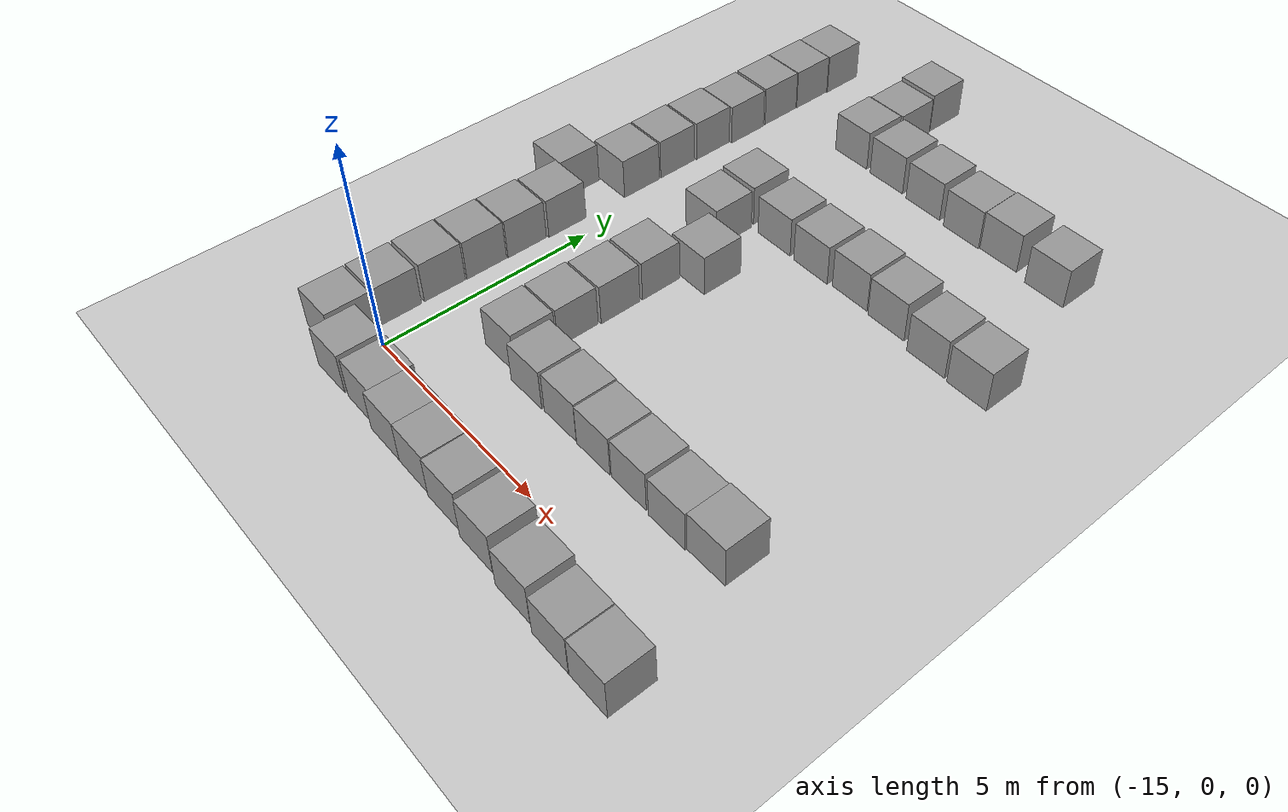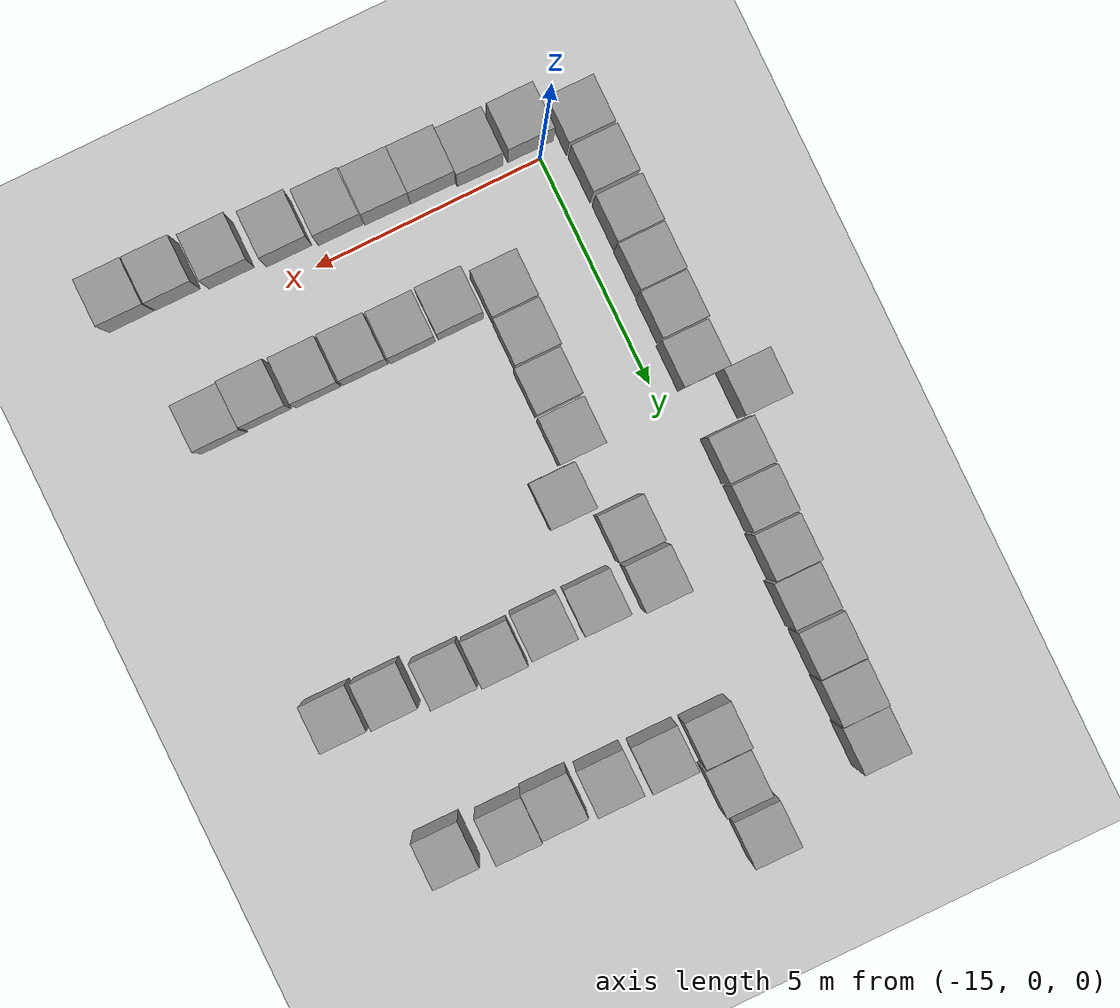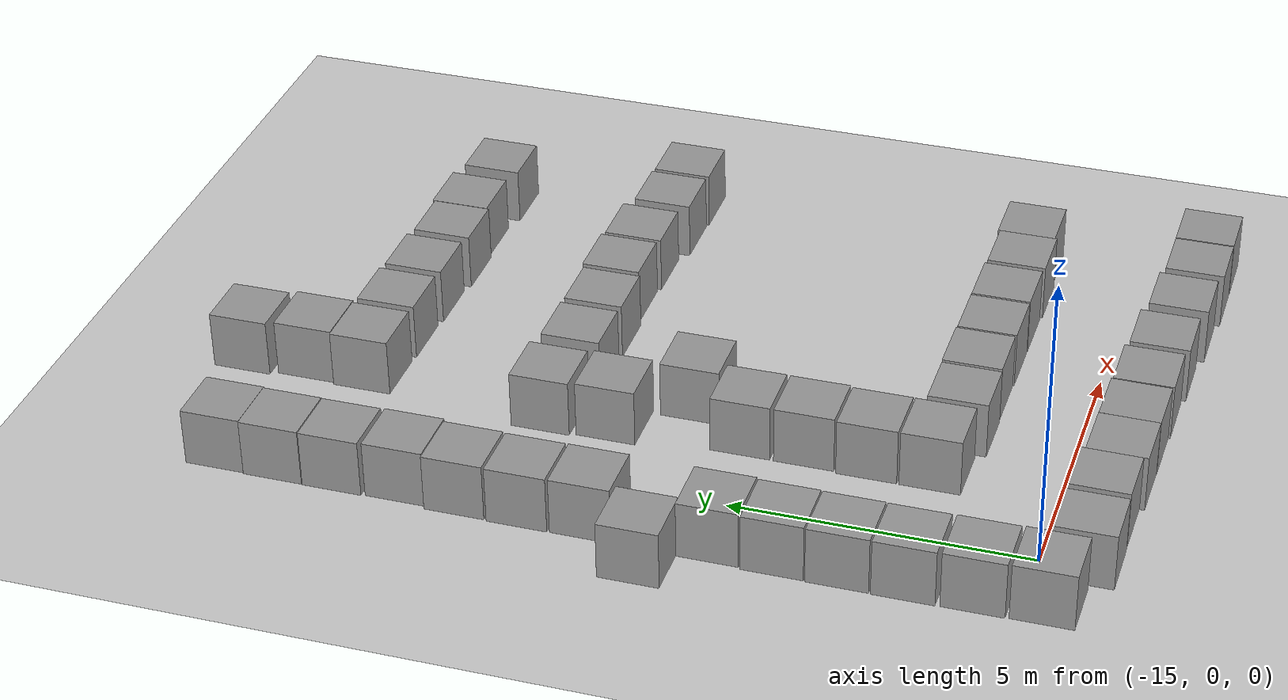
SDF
<sdf version="1.7">
 <world name="default">
  <model name="ground_plane">
   <static>1</static>
   <link name="link">
    <collision name="collision">
     <geometry><plane><normal>0 0 1</normal><size>100 100</size></plane></geometry>
     <surface><friction><ode><mu>100</mu><mu2>50</mu2></ode></friction></surface>
    </collision>
    <visual name="visual">
     <cast_shadows>0</cast_shadows>
     <geometry><plane><normal>0 0 1</normal><size>100 100</size></plane></geometry>
     <material>
      <script><uri>file://media/materials/scripts/gazebo.material</uri><name>Gazebo/Grey</name></script>
     </material>
    </visual>
   </link>
  </model>
  <model name="unit_box_76">
   <pose>-7.36966 11.5014 0.499995 -1e-05 0 0</pose>
   <link name="link">
    <inertial>
     <mass>1</mass>
     <inertia>
      <ixx>0.166667</ixx>
      <ixy>0</ixy>
      <ixz>0</ixz>
      <iyy>0.166667</iyy>
      <iyz>0</iyz>
      <izz>0.166667</izz>
     </inertia>
    </inertial>
    <collision name="collision"><geometry><box><size>1 1 1</size></box></geometry></collision>
    <visual name="visual">
     <geometry><box><size>1 1 1</size></box></geometry>
     <material>
      <script><name>Gazebo/Grey</name><uri>file://media/materials/scripts/gazebo.material</uri></script>
     </material>
    </visual>
   </link>
  </model>
  <model name="unit_box_77">
   <pose>-8.67595 11.6101 0.499995 0 1e-05 0</pose>
   <link name="link">
    <inertial>
     <mass>1</mass>
     <inertia>
      <ixx>0.166667</ixx>
      <ixy>0</ixy>
      <ixz>0</ixz>
      <iyy>0.166667</iyy>
      <iyz>0</iyz>
      <izz>0.166667</izz>
     </inertia>
    </inertial>
    <collision name="collision"><geometry><box><size>1 1 1</size></box></geometry></collision>
    <visual name="visual">
     <geometry><box><size>1 1 1</size></box></geometry>
     <material>
      <script><name>Gazebo/Grey</name><uri>file://media/materials/scripts/gazebo.material</uri></script>
     </material>
    </visual>
   </link>
  </model>
  <model name="unit_box_78">
   <pose>-9.68226 11.5677 0.499995 0 -1e-05 0</pose>
   <link name="link">
    <inertial>
     <mass>1</mass>
     <inertia>
      <ixx>0.166667</ixx>
      <ixy>0</ixy>
      <ixz>0</ixz>
      <iyy>0.166667</iyy>
      <iyz>0</iyz>
      <izz>0.166667</izz>
     </inertia>
    </inertial>
    <collision name="collision"><geometry><box><size>1 1 1</size></box></geometry></collision>
    <visual name="visual">
     <geometry><box><size>1 1 1</size></box></geometry>
     <material>
      <script><name>Gazebo/Grey</name><uri>file://media/materials/scripts/gazebo.material</uri></script>
     </material>
    </visual>
   </link>
  </model>
  <model name="unit_box_79">
   <pose>-10.8496 11.6353 0.499995 0 1e-05 0</pose>
   <link name="link">
    <inertial>
     <mass>1</mass>
     <inertia>
      <ixx>0.166667</ixx>
      <ixy>0</ixy>
      <ixz>0</ixz>
      <iyy>0.166667</iyy>
      <iyz>0</iyz>
      <izz>0.166667</izz>
     </inertia>
    </inertial>
    <collision name="collision"><geometry><box><size>1 1 1</size></box></geometry></collision>
    <visual name="visual">
     <geometry><box><size>1 1 1</size></box></geometry>
     <material>
      <script><name>Gazebo/Grey</name><uri>file://media/materials/scripts/gazebo.material</uri></script>
     </material>
    </visual>
   </link>
  </model>
  <model name="unit_box_82">
   <pose>-6.5467 8.19298 0.499995 0 1e-05 0</pose>
   <link name="link">
    <inertial>
     <mass>1</mass>
     <inertia>
      <ixx>0.166667</ixx>
      <ixy>0</ixy>
      <ixz>0</ixz>
      <iyy>0.166667</iyy>
      <iyz>0</iyz>
      <izz>0.166667</izz>
     </inertia>
    </inertial>
    <collision name="collision"><geometry><box><size>1 1 1</size></box></geometry></collision>
    <visual name="visual">
     <geometry><box><size>1 1 1</size></box></geometry>
     <material>
      <script><name>Gazebo/Grey</name><uri>file://media/materials/scripts/gazebo.material</uri></script>
     </material>
    </visual>
   </link>
  </model>
  <model name="unit_box_83">
   <pose>-7.62958 8.22347 0.499995 0 -1e-05 0</pose>
   <link name="link">
    <inertial>
     <mass>1</mass>
     <inertia>
      <ixx>0.166667</ixx>
      <ixy>0</ixy>
      <ixz>0</ixz>
      <iyy>0.166667</iyy>
      <iyz>0</iyz>
      <izz>0.166667</izz>
     </inertia>
    </inertial>
    <collision name="collision"><geometry><box><size>1 1 1</size></box></geometry></collision>
    <visual name="visual">
     <geometry><box><size>1 1 1</size></box></geometry>
     <material>
      <script><name>Gazebo/Grey</name><uri>file://media/materials/scripts/gazebo.material</uri></script>
     </material>
    </visual>
   </link>
  </model>
  <model name="unit_box_84">
   <pose>-8.83422 8.36705 0.499995 0 1e-05 0</pose>
   <link name="link">
    <inertial>
     <mass>1</mass>
     <inertia>
      <ixx>0.166667</ixx>
      <ixy>0</ixy>
      <ixz>0</ixz>
      <iyy>0.166667</iyy>
      <iyz>0</iyz>
      <izz>0.166667</izz>
     </inertia>
    </inertial>
    <collision name="collision"><geometry><box><size>1 1 1</size></box></geometry></collision>
    <visual name="visual">
     <geometry><box><size>1 1 1</size></box></geometry>
     <material>
      <script><name>Gazebo/Grey</name><uri>file://media/materials/scripts/gazebo.material</uri></script>
     </material>
    </visual>
   </link>
  </model>
  <model name="unit_box_85">
   <pose>-11.9972 11.6792 0.499995 -1e-05 0 0</pose>
   <link name="link">
    <inertial>
     <mass>1</mass>
     <inertia>
      <ixx>0.166667</ixx>
      <ixy>0</ixy>
      <ixz>0</ixz>
      <iyy>0.166667</iyy>
      <iyz>0</iyz>
      <izz>0.166667</izz>
     </inertia>
    </inertial>
    <collision name="collision"><geometry><box><size>1 1 1</size></box></geometry></collision>
    <visual name="visual">
     <geometry><box><size>1 1 1</size></box></geometry>
     <material>
      <script><name>Gazebo/Grey</name><uri>file://media/materials/scripts/gazebo.material</uri></script>
     </material>
    </visual>
   </link>
  </model>
  <model name="unit_box_86">
   <pose>-13.1299 11.7058 0.499995 0 1e-05 0</pose>
   <link name="link">
    <inertial>
     <mass>1</mass>
     <inertia>
      <ixx>0.166667</ixx>
      <ixy>0</ixy>
      <ixz>0</ixz>
      <iyy>0.166667</iyy>
      <iyz>0</iyz>
      <izz>0.166667</izz>
     </inertia>
    </inertial>
    <collision name="collision"><geometry><box><size>1 1 1</size></box></geometry></collision>
    <visual name="visual">
     <geometry><box><size>1 1 1</size></box></geometry>
     <material>
      <script><name>Gazebo/Grey</name><uri>file://media/materials/scripts/gazebo.material</uri></script>
     </material>
    </visual>
   </link>
  </model>
  <model name="unit_box_87">
   <pose>-9.9062 8.41725 0.499995 0 1e-05 0</pose>
   <link name="link">
    <inertial>
     <mass>1</mass>
     <inertia>
      <ixx>0.166667</ixx>
      <ixy>0</ixy>
      <ixz>0</ixz>
      <iyy>0.166667</iyy>
      <iyz>0</iyz>
      <izz>0.166667</izz>
     </inertia>
    </inertial>
    <collision name="collision"><geometry><box><size>1 1 1</size></box></geometry></collision>
    <visual name="visual">
     <geometry><box><size>1 1 1</size></box></geometry>
     <material>
      <script><name>Gazebo/Grey</name><uri>file://media/materials/scripts/gazebo.material</uri></script>
     </material>
    </visual>
   </link>
  </model>
  <model name="unit_box_88">
   <pose>-11.0062 8.36397 0.499995 -1e-05 -0 0</pose>
   <link name="link">
    <inertial>
     <mass>1</mass>
     <inertia>
      <ixx>0.166667</ixx>
      <ixy>0</ixy>
      <ixz>0</ixz>
      <iyy>0.166667</iyy>
      <iyz>0</iyz>
      <izz>0.166667</izz>
     </inertia>
    </inertial>
    <collision name="collision"><geometry><box><size>1 1 1</size></box></geometry></collision>
    <visual name="visual">
     <geometry><box><size>1 1 1</size></box></geometry>
     <material>
      <script><name>Gazebo/Grey</name><uri>file://media/materials/scripts/gazebo.material</uri></script>
     </material>
    </visual>
   </link>
  </model>
  <model name="unit_box_89">
   <pose>-12.1401 8.38199 0.499995 0 1e-05 0</pose>
   <link name="link">
    <inertial>
     <mass>1</mass>
     <inertia>
      <ixx>0.166667</ixx>
      <ixy>0</ixy>
      <ixz>0</ixz>
      <iyy>0.166667</iyy>
      <iyz>0</iyz>
      <izz>0.166667</izz>
     </inertia>
    </inertial>
    <collision name="collision"><geometry><box><size>1 1 1</size></box></geometry></collision>
    <visual name="visual">
     <geometry><box><size>1 1 1</size></box></geometry>
     <material>
      <script><name>Gazebo/Grey</name><uri>file://media/materials/scripts/gazebo.material</uri></script>
     </material>
    </visual>
   </link>
  </model>
  <model name="unit_box_90">
   <pose>-13.4024 8.4816 0.499995 0 1e-05 0</pose>
   <link name="link">
    <inertial>
     <mass>1</mass>
     <inertia>
      <ixx>0.166667</ixx>
      <ixy>0</ixy>
      <ixz>0</ixz>
      <iyy>0.166667</iyy>
      <iyz>0</iyz>
      <izz>0.166667</izz>
     </inertia>
    </inertial>
    <collision name="collision"><geometry><box><size>1 1 1</size></box></geometry></collision>
    <visual name="visual">
     <geometry><box><size>1 1 1</size></box></geometry>
     <material>
      <script><name>Gazebo/Grey</name><uri>file://media/materials/scripts/gazebo.material</uri></script>
     </material>
    </visual>
   </link>
  </model>
  <model name="unit_box_91">
   <pose>-13.0801 12.7181 0.499995 -1e-05 0 0</pose>
   <link name="link">
    <inertial>
     <mass>1</mass>
     <inertia>
      <ixx>0.166667</ixx>
      <ixy>0</ixy>
      <ixz>0</ixz>
      <iyy>0.166667</iyy>
      <iyz>0</iyz>
      <izz>0.166667</izz>
     </inertia>
    </inertial>
    <collision name="collision"><geometry><box><size>1 1 1</size></box></geometry></collision>
    <visual name="visual">
     <geometry><box><size>1 1 1</size></box></geometry>
     <material>
      <script><name>Gazebo/Grey</name><uri>file://media/materials/scripts/gazebo.material</uri></script>
     </material>
    </visual>
   </link>
  </model>
  <model name="unit_box_92">
   <pose>-13.1566 13.8382 0.499995 0 1e-05 0</pose>
   <link name="link">
    <inertial>
     <mass>1</mass>
     <inertia>
      <ixx>0.166667</ixx>
      <ixy>0</ixy>
      <ixz>0</ixz>
      <iyy>0.166667</iyy>
      <iyz>0</iyz>
      <izz>0.166667</izz>
     </inertia>
    </inertial>
    <collision name="collision"><geometry><box><size>1 1 1</size></box></geometry></collision>
    <visual name="visual">
     <geometry><box><size>1 1 1</size></box></geometry>
     <material>
      <script><name>Gazebo/Grey</name><uri>file://media/materials/scripts/gazebo.material</uri></script>
     </material>
    </visual>
   </link>
  </model>
  <model name="unit_box_93">
   <pose>-15.872 11.0985 0.5 -0 -0 -0</pose>
   <link name="link">
    <inertial>
     <mass>1</mass>
     <inertia>
      <ixx>0.166667</ixx>
      <ixy>0</ixy>
      <ixz>0</ixz>
      <iyy>0.166667</iyy>
      <iyz>0</iyz>
      <izz>0.166667</izz>
     </inertia>
    </inertial>
    <collision name="collision"><geometry><box><size>1 1 1</size></box></geometry></collision>
    <visual name="visual">
     <geometry><box><size>1 1 1</size></box></geometry>
     <material>
      <script><name>Gazebo/Grey</name><uri>file://media/materials/scripts/gazebo.material</uri></script>
     </material>
    </visual>
   </link>
  </model>
  <model name="unit_box_94">
   <pose>-15.9201 9.01925 0.499995 -1e-05 -0 0</pose>
   <link name="link">
    <inertial>
     <mass>1</mass>
     <inertia>
      <ixx>0.166667</ixx>
      <ixy>0</ixy>
      <ixz>0</ixz>
      <iyy>0.166667</iyy>
      <iyz>0</iyz>
      <izz>0.166667</izz>
     </inertia>
    </inertial>
    <collision name="collision"><geometry><box><size>1 1 1</size></box></geometry></collision>
    <visual name="visual">
     <geometry><box><size>1 1 1</size></box></geometry>
     <material>
      <script><name>Gazebo/Grey</name><uri>file://media/materials/scripts/gazebo.material</uri></script>
     </material>
    </visual>
   </link>
  </model>
  <model name="unit_box_95">
   <pose>-15.8541 10.0347 0.499995 0 1e-05 0</pose>
   <link name="link">
    <inertial>
     <mass>1</mass>
     <inertia>
      <ixx>0.166667</ixx>
      <ixy>0</ixy>
      <ixz>0</ixz>
      <iyy>0.166667</iyy>
      <iyz>0</iyz>
      <izz>0.166667</izz>
     </inertia>
    </inertial>
    <collision name="collision"><geometry><box><size>1 1 1</size></box></geometry></collision>
    <visual name="visual">
     <geometry><box><size>1 1 1</size></box></geometry>
     <material>
      <script><name>Gazebo/Grey</name><uri>file://media/materials/scripts/gazebo.material</uri></script>
     </material>
    </visual>
   </link>
  </model>
  <model name="unit_box_96">
   <pose>-15.8622 12.115 0.499995 0 1e-05 0</pose>
   <link name="link">
    <inertial>
     <mass>1</mass>
     <inertia>
      <ixx>0.166667</ixx>
      <ixy>0</ixy>
      <ixz>0</ixz>
      <iyy>0.166667</iyy>
      <iyz>0</iyz>
      <izz>0.166667</izz>
     </inertia>
    </inertial>
    <collision name="collision"><geometry><box><size>1 1 1</size></box></geometry></collision>
    <visual name="visual">
     <geometry><box><size>1 1 1</size></box></geometry>
     <material>
      <script><name>Gazebo/Grey</name><uri>file://media/materials/scripts/gazebo.material</uri></script>
     </material>
    </visual>
   </link>
  </model>
  <model name="unit_box_97">
   <pose>-15.839 13.1183 0.499995 -1e-05 0 0</pose>
   <link name="link">
    <inertial>
     <mass>1</mass>
     <inertia>
      <ixx>0.166667</ixx>
      <ixy>0</ixy>
      <ixz>0</ixz>
      <iyy>0.166667</iyy>
      <iyz>0</iyz>
      <izz>0.166667</izz>
     </inertia>
    </inertial>
    <collision name="collision"><geometry><box><size>1 1 1</size></box></geometry></collision>
    <visual name="visual">
     <geometry><box><size>1 1 1</size></box></geometry>
     <material>
      <script><name>Gazebo/Grey</name><uri>file://media/materials/scripts/gazebo.material</uri></script>
     </material>
    </visual>
   </link>
  </model>
  <model name="unit_box_98">
   <pose>-15.9405 7.97497 0.499995 0 1e-05 0</pose>
   <link name="link">
    <inertial>
     <mass>1</mass>
     <inertia>
      <ixx>0.166667</ixx>
      <ixy>0</ixy>
      <ixz>0</ixz>
      <iyy>0.166667</iyy>
      <iyz>0</iyz>
      <izz>0.166667</izz>
     </inertia>
    </inertial>
    <collision name="collision"><geometry><box><size>1 1 1</size></box></geometry></collision>
    <visual name="visual">
     <geometry><box><size>1 1 1</size></box></geometry>
     <material>
      <script><name>Gazebo/Grey</name><uri>file://media/materials/scripts/gazebo.material</uri></script>
     </material>
    </visual>
   </link>
  </model>
  <model name="unit_box_99">
   <pose>-15.9352 6.93311 0.499995 -1e-05 0 0</pose>
   <link name="link">
    <inertial>
     <mass>1</mass>
     <inertia>
      <ixx>0.166667</ixx>
      <ixy>0</ixy>
      <ixz>0</ixz>
      <iyy>0.166667</iyy>
      <iyz>0</iyz>
      <izz>0.166667</izz>
     </inertia>
    </inertial>
    <collision name="collision"><geometry><box><size>1 1 1</size></box></geometry></collision>
    <visual name="visual">
     <geometry><box><size>1 1 1</size></box></geometry>
     <material>
      <script><name>Gazebo/Grey</name><uri>file://media/materials/scripts/gazebo.material</uri></script>
     </material>
    </visual>
   </link>
  </model>
  <model name="unit_box_100">
   <pose>-16.7856 5.87885 0.499995 1e-05 -0 0</pose>
   <link name="link">
    <inertial>
     <mass>1</mass>
     <inertia>
      <ixx>0.166667</ixx>
      <ixy>0</ixy>
      <ixz>0</ixz>
      <iyy>0.166667</iyy>
      <iyz>0</iyz>
      <izz>0.166667</izz>
     </inertia>
    </inertial>
    <collision name="collision"><geometry><box><size>1 1 1</size></box></geometry></collision>
    <visual name="visual">
     <geometry><box><size>1 1 1</size></box></geometry>
     <material>
      <script><name>Gazebo/Grey</name><uri>file://media/materials/scripts/gazebo.material</uri></script>
     </material>
    </visual>
   </link>
  </model>
  <model name="unit_box_101">
   <pose>-15.9509 4.8761 0.499995 0 1e-05 0</pose>
   <link name="link">
    <inertial>
     <mass>1</mass>
     <inertia>
      <ixx>0.166667</ixx>
      <ixy>0</ixy>
      <ixz>0</ixz>
      <iyy>0.166667</iyy>
      <iyz>0</iyz>
      <izz>0.166667</izz>
     </inertia>
    </inertial>
    <collision name="collision"><geometry><box><size>1 1 1</size></box></geometry></collision>
    <visual name="visual">
     <geometry><box><size>1 1 1</size></box></geometry>
     <material>
      <script><name>Gazebo/Grey</name><uri>file://media/materials/scripts/gazebo.material</uri></script>
     </material>
    </visual>
   </link>
  </model>
  <model name="unit_box_102">
   <pose>-13.3553 7.38097 0.499995 0 1e-05 0</pose>
   <link name="link">
    <inertial>
     <mass>1</mass>
     <inertia>
      <ixx>0.166667</ixx>
      <ixy>0</ixy>
      <ixz>0</ixz>
      <iyy>0.166667</iyy>
      <iyz>0</iyz>
      <izz>0.166667</izz>
     </inertia>
    </inertial>
    <collision name="collision"><geometry><box><size>1 1 1</size></box></geometry></collision>
    <visual name="visual">
     <geometry><box><size>1 1 1</size></box></geometry>
     <material>
      <script><name>Gazebo/Grey</name><uri>file://media/materials/scripts/gazebo.material</uri></script>
     </material>
    </visual>
   </link>
  </model>
  <model name="unit_box_103">
   <pose>-12.4339 6.24083 0.499995 -1e-05 0 0</pose>
   <link name="link">
    <inertial>
     <mass>1</mass>
     <inertia>
      <ixx>0.166667</ixx>
      <ixy>0</ixy>
      <ixz>0</ixz>
      <iyy>0.166667</iyy>
      <iyz>0</iyz>
      <izz>0.166667</izz>
     </inertia>
    </inertial>
    <collision name="collision"><geometry><box><size>1 1 1</size></box></geometry></collision>
    <visual name="visual">
     <geometry><box><size>1 1 1</size></box></geometry>
     <material>
      <script><name>Gazebo/Grey</name><uri>file://media/materials/scripts/gazebo.material</uri></script>
     </material>
    </visual>
   </link>
  </model>
  <model name="unit_box_104">
   <pose>-13.1391 5.18055 0.499995 1e-05 -0 0</pose>
   <link name="link">
    <inertial>
     <mass>1</mass>
     <inertia>
      <ixx>0.166667</ixx>
      <ixy>0</ixy>
      <ixz>0</ixz>
      <iyy>0.166667</iyy>
      <iyz>0</iyz>
      <izz>0.166667</izz>
     </inertia>
    </inertial>
    <collision name="collision"><geometry><box><size>1 1 1</size></box></geometry></collision>
    <visual name="visual">
     <geometry><box><size>1 1 1</size></box></geometry>
     <material>
      <script><name>Gazebo/Grey</name><uri>file://media/materials/scripts/gazebo.material</uri></script>
     </material>
    </visual>
   </link>
  </model>
  <model name="unit_box_105">
   <pose>-13.1438 4.119 0.499995 -1e-05 0 0</pose>
   <link name="link">
    <inertial>
     <mass>1</mass>
     <inertia>
      <ixx>0.166667</ixx>
      <ixy>0</ixy>
      <ixz>0</ixz>
      <iyy>0.166667</iyy>
      <iyz>0</iyz>
      <izz>0.166667</izz>
     </inertia>
    </inertial>
    <collision name="collision"><geometry><box><size>1 1 1</size></box></geometry></collision>
    <visual name="visual">
     <geometry><box><size>1 1 1</size></box></geometry>
     <material>
      <script><name>Gazebo/Grey</name><uri>file://media/materials/scripts/gazebo.material</uri></script>
     </material>
    </visual>
   </link>
  </model>
  <model name="unit_box_106">
   <pose>-13.1862 3.07745 0.499995 0 1e-05 0</pose>
   <link name="link">
    <inertial>
     <mass>1</mass>
     <inertia>
      <ixx>0.166667</ixx>
      <ixy>0</ixy>
      <ixz>0</ixz>
      <iyy>0.166667</iyy>
      <iyz>0</iyz>
      <izz>0.166667</izz>
     </inertia>
    </inertial>
    <collision name="collision"><geometry><box><size>1 1 1</size></box></geometry></collision>
    <visual name="visual">
     <geometry><box><size>1 1 1</size></box></geometry>
     <material>
      <script><name>Gazebo/Grey</name><uri>file://media/materials/scripts/gazebo.material</uri></script>
     </material>
    </visual>
   </link>
  </model>
  <model name="unit_box_107">
   <pose>-13.1906 2.04081 0.499995 -1e-05 0 0</pose>
   <link name="link">
    <inertial>
     <mass>1</mass>
     <inertia>
      <ixx>0.166667</ixx>
      <ixy>0</ixy>
      <ixz>0</ixz>
      <iyy>0.166667</iyy>
      <iyz>0</iyz>
      <izz>0.166667</izz>
     </inertia>
    </inertial>
    <collision name="collision"><geometry><box><size>1 1 1</size></box></geometry></collision>
    <visual name="visual">
     <geometry><box><size>1 1 1</size></box></geometry>
     <material>
      <script><name>Gazebo/Grey</name><uri>file://media/materials/scripts/gazebo.material</uri></script>
     </material>
    </visual>
   </link>
  </model>
  <model name="unit_box_108">
   <pose>-15.9896 3.83812 0.499995 0 1e-05 0</pose>
   <link name="link">
    <inertial>
     <mass>1</mass>
     <inertia>
      <ixx>0.166667</ixx>
      <ixy>0</ixy>
      <ixz>0</ixz>
      <iyy>0.166667</iyy>
      <iyz>0</iyz>
      <izz>0.166667</izz>
     </inertia>
    </inertial>
    <collision name="collision"><geometry><box><size>1 1 1</size></box></geometry></collision>
    <visual name="visual">
     <geometry><box><size>1 1 1</size></box></geometry>
     <material>
      <script><name>Gazebo/Grey</name><uri>file://media/materials/scripts/gazebo.material</uri></script>
     </material>
    </visual>
   </link>
  </model>
  <model name="unit_box_109">
   <pose>-16.0044 2.81289 0.499995 1e-05 -0 0</pose>
   <link name="link">
    <inertial>
     <mass>1</mass>
     <inertia>
      <ixx>0.166667</ixx>
      <ixy>0</ixy>
      <ixz>0</ixz>
      <iyy>0.166667</iyy>
      <iyz>0</iyz>
      <izz>0.166667</izz>
     </inertia>
    </inertial>
    <collision name="collision"><geometry><box><size>1 1 1</size></box></geometry></collision>
    <visual name="visual">
     <geometry><box><size>1 1 1</size></box></geometry>
     <material>
      <script><name>Gazebo/Grey</name><uri>file://media/materials/scripts/gazebo.material</uri></script>
     </material>
    </visual>
   </link>
  </model>
  <model name="unit_box_110">
   <pose>-16.0156 1.78233 0.499995 0 1e-05 0</pose>
   <link name="link">
    <inertial>
     <mass>1</mass>
     <inertia>
      <ixx>0.166667</ixx>
      <ixy>0</ixy>
      <ixz>0</ixz>
      <iyy>0.166667</iyy>
      <iyz>0</iyz>
      <izz>0.166667</izz>
     </inertia>
    </inertial>
    <collision name="collision"><geometry><box><size>1 1 1</size></box></geometry></collision>
    <visual name="visual">
     <geometry><box><size>1 1 1</size></box></geometry>
     <material>
      <script><name>Gazebo/Grey</name><uri>file://media/materials/scripts/gazebo.material</uri></script>
     </material>
    </visual>
   </link>
  </model>
  <model name="unit_box_111">
   <pose>-16.0063 0.710142 0.499995 -1e-05 0 0</pose>
   <link name="link">
    <inertial>
     <mass>1</mass>
     <inertia>
      <ixx>0.166667</ixx>
      <ixy>0</ixy>
      <ixz>0</ixz>
      <iyy>0.166667</iyy>
      <iyz>0</iyz>
      <izz>0.166667</izz>
     </inertia>
    </inertial>
    <collision name="collision"><geometry><box><size>1 1 1</size></box></geometry></collision>
    <visual name="visual">
     <geometry><box><size>1 1 1</size></box></geometry>
     <material>
      <script><name>Gazebo/Grey</name><uri>file://media/materials/scripts/gazebo.material</uri></script>
     </material>
    </visual>
   </link>
  </model>
  <model name="unit_box_112">
   <pose>-15.9928 -0.34604 0.499995 0 1e-05 0</pose>
   <link name="link">
    <inertial>
     <mass>1</mass>
     <inertia>
      <ixx>0.166667</ixx>
      <ixy>0</ixy>
      <ixz>0</ixz>
      <iyy>0.166667</iyy>
      <iyz>0</iyz>
      <izz>0.166667</izz>
     </inertia>
    </inertial>
    <collision name="collision"><geometry><box><size>1 1 1</size></box></geometry></collision>
    <visual name="visual">
     <geometry><box><size>1 1 1</size></box></geometry>
     <material>
      <script><name>Gazebo/Grey</name><uri>file://media/materials/scripts/gazebo.material</uri></script>
     </material>
    </visual>
   </link>
  </model>
  <model name="unit_box_113">
   <pose>-14.877 -0.728858 0.499995 -1e-05 0 0</pose>
   <link name="link">
    <inertial>
     <mass>1</mass>
     <inertia>
      <ixx>0.166667</ixx>
      <ixy>0</ixy>
      <ixz>0</ixz>
      <iyy>0.166667</iyy>
      <iyz>0</iyz>
      <izz>0.166667</izz>
     </inertia>
    </inertial>
    <collision name="collision"><geometry><box><size>1 1 1</size></box></geometry></collision>
    <visual name="visual">
     <geometry><box><size>1 1 1</size></box></geometry>
     <material>
      <script><name>Gazebo/Grey</name><uri>file://media/materials/scripts/gazebo.material</uri></script>
     </material>
    </visual>
   </link>
  </model>
  <model name="unit_box_114">
   <pose>-13.7609 -0.72631 0.499995 1e-05 0 -0.011216</pose>
   <link name="link">
    <inertial>
     <mass>1</mass>
     <inertia>
      <ixx>0.166667</ixx>
      <ixy>0</ixy>
      <ixz>0</ixz>
      <iyy>0.166667</iyy>
      <iyz>0</iyz>
      <izz>0.166667</izz>
     </inertia>
    </inertial>
    <collision name="collision"><geometry><box><size>1 1 1</size></box></geometry></collision>
    <visual name="visual">
     <geometry><box><size>1 1 1</size></box></geometry>
     <material>
      <script><name>Gazebo/Grey</name><uri>file://media/materials/scripts/gazebo.material</uri></script>
     </material>
    </visual>
   </link>
  </model>
  <model name="unit_box_115">
   <pose>-12.0773 1.87529 0.499995 -1e-05 0 0</pose>
   <link name="link">
    <inertial>
     <mass>1</mass>
     <inertia>
      <ixx>0.166667</ixx>
      <ixy>0</ixy>
      <ixz>0</ixz>
      <iyy>0.166667</iyy>
      <iyz>0</iyz>
      <izz>0.166667</izz>
     </inertia>
    </inertial>
    <collision name="collision"><geometry><box><size>1 1 1</size></box></geometry></collision>
    <visual name="visual">
     <geometry><box><size>1 1 1</size></box></geometry>
     <material>
      <script><name>Gazebo/Grey</name><uri>file://media/materials/scripts/gazebo.material</uri></script>
     </material>
    </visual>
   </link>
  </model>
  <model name="unit_box_116">
   <pose>-11.0152 1.88765 0.5 0 -0 0</pose>
   <link name="link">
    <inertial>
     <mass>1</mass>
     <inertia>
      <ixx>0.166667</ixx>
      <ixy>0</ixy>
      <ixz>0</ixz>
      <iyy>0.166667</iyy>
      <iyz>0</iyz>
      <izz>0.166667</izz>
     </inertia>
    </inertial>
    <collision name="collision"><geometry><box><size>1 1 1</size></box></geometry></collision>
    <visual name="visual">
     <geometry><box><size>1 1 1</size></box></geometry>
     <material>
      <script><name>Gazebo/Grey</name><uri>file://media/materials/scripts/gazebo.material</uri></script>
     </material>
    </visual>
   </link>
  </model>
  <model name="unit_box_117">
   <pose>-9.97691 1.86931 0.499995 0 1e-05 0</pose>
   <link name="link">
    <inertial>
     <mass>1</mass>
     <inertia>
      <ixx>0.166667</ixx>
      <ixy>0</ixy>
      <ixz>0</ixz>
      <iyy>0.166667</iyy>
      <iyz>0</iyz>
      <izz>0.166667</izz>
     </inertia>
    </inertial>
    <collision name="collision"><geometry><box><size>1 1 1</size></box></geometry></collision>
    <visual name="visual">
     <geometry><box><size>1 1 1</size></box></geometry>
     <material>
      <script><name>Gazebo/Grey</name><uri>file://media/materials/scripts/gazebo.material</uri></script>
     </material>
    </visual>
   </link>
  </model>
  <model name="unit_box_118">
   <pose>-8.93478 1.86691 0.499995 1e-05 -0 0</pose>
   <link name="link">
    <inertial>
     <mass>1</mass>
     <inertia>
      <ixx>0.166667</ixx>
      <ixy>0</ixy>
      <ixz>0</ixz>
      <iyy>0.166667</iyy>
      <iyz>0</iyz>
      <izz>0.166667</izz>
     </inertia>
    </inertial>
    <collision name="collision"><geometry><box><size>1 1 1</size></box></geometry></collision>
    <visual name="visual">
     <geometry><box><size>1 1 1</size></box></geometry>
     <material>
      <script><name>Gazebo/Grey</name><uri>file://media/materials/scripts/gazebo.material</uri></script>
     </material>
    </visual>
   </link>
  </model>
  <model name="unit_box_119">
   <pose>-7.84055 1.83815 0.499995 -0 -1e-05 0.002763</pose>
   <link name="link">
    <inertial>
     <mass>1</mass>
     <inertia>
      <ixx>0.166667</ixx>
      <ixy>0</ixy>
      <ixz>0</ixz>
      <iyy>0.166667</iyy>
      <iyz>0</iyz>
      <izz>0.166667</izz>
     </inertia>
    </inertial>
    <collision name="collision"><geometry><box><size>1 1 1</size></box></geometry></collision>
    <visual name="visual">
     <geometry><box><size>1 1 1</size></box></geometry>
     <material>
      <script><name>Gazebo/Grey</name><uri>file://media/materials/scripts/gazebo.material</uri></script>
     </material>
    </visual>
   </link>
  </model>
  <model name="unit_box_120">
   <pose>-6.84061 1.87689 0.499995 -0 1e-05 0.002709</pose>
   <link name="link">
    <inertial>
     <mass>1</mass>
     <inertia>
      <ixx>0.166667</ixx>
      <ixy>0</ixy>
      <ixz>0</ixz>
      <iyy>0.166667</iyy>
      <iyz>0</iyz>
      <izz>0.166667</izz>
     </inertia>
    </inertial>
    <collision name="collision"><geometry><box><size>1 1 1</size></box></geometry></collision>
    <visual name="visual">
     <geometry><box><size>1 1 1</size></box></geometry>
     <material>
      <script><name>Gazebo/Grey</name><uri>file://media/materials/scripts/gazebo.material</uri></script>
     </material>
    </visual>
   </link>
  </model>
  <model name="unit_box_133">
   <pose>-6.21451 -1.11865 0.499995 0 -1e-05 0</pose>
   <link name="link">
    <inertial>
     <mass>1</mass>
     <inertia>
      <ixx>0.166667</ixx>
      <ixy>0</ixy>
      <ixz>0</ixz>
      <iyy>0.166667</iyy>
      <iyz>0</iyz>
      <izz>0.166667</izz>
     </inertia>
    </inertial>
    <collision name="collision"><geometry><box><size>1 1 1</size></box></geometry></collision>
    <visual name="visual">
     <geometry><box><size>1 1 1</size></box></geometry>
     <material>
      <script><name>Gazebo/Grey</name><uri>file://media/materials/scripts/gazebo.material</uri></script>
     </material>
    </visual>
   </link>
  </model>
  <model name="unit_box_134">
   <pose>-7.23651 -1.11583 0.499995 0 -1e-05 0</pose>
   <link name="link">
    <inertial>
     <mass>1</mass>
     <inertia>
      <ixx>0.166667</ixx>
      <ixy>0</ixy>
      <ixz>0</ixz>
      <iyy>0.166667</iyy>
      <iyz>0</iyz>
      <izz>0.166667</izz>
     </inertia>
    </inertial>
    <collision name="collision"><geometry><box><size>1 1 1</size></box></geometry></collision>
    <visual name="visual">
     <geometry><box><size>1 1 1</size></box></geometry>
     <material>
      <script><name>Gazebo/Grey</name><uri>file://media/materials/scripts/gazebo.material</uri></script>
     </material>
    </visual>
   </link>
  </model>
  <model name="unit_box_135">
   <pose>-8.39557 -1.03793 0.499995 0 -1e-05 0</pose>
   <link name="link">
    <inertial>
     <mass>1</mass>
     <inertia>
      <ixx>0.166667</ixx>
      <ixy>0</ixy>
      <ixz>0</ixz>
      <iyy>0.166667</iyy>
      <iyz>0</iyz>
      <izz>0.166667</izz>
     </inertia>
    </inertial>
    <collision name="collision"><geometry><box><size>1 1 1</size></box></geometry></collision>
    <visual name="visual">
     <geometry><box><size>1 1 1</size></box></geometry>
     <material>
      <script><name>Gazebo/Grey</name><uri>file://media/materials/scripts/gazebo.material</uri></script>
     </material>
    </visual>
   </link>
  </model>
  <model name="unit_box_136">
   <pose>-9.62361 -0.935877 0.499995 -1e-05 -0 -0</pose>
   <link name="link">
    <inertial>
     <mass>1</mass>
     <inertia>
      <ixx>0.166667</ixx>
      <ixy>0</ixy>
      <ixz>0</ixz>
      <iyy>0.166667</iyy>
      <iyz>0</iyz>
      <izz>0.166667</izz>
     </inertia>
    </inertial>
    <collision name="collision"><geometry><box><size>1 1 1</size></box></geometry></collision>
    <visual name="visual">
     <geometry><box><size>1 1 1</size></box></geometry>
     <material>
      <script><name>Gazebo/Grey</name><uri>file://media/materials/scripts/gazebo.material</uri></script>
     </material>
    </visual>
   </link>
  </model>
  <model name="unit_box_137">
   <pose>-10.74 -0.869872 0.499995 1e-05 -0 0</pose>
   <link name="link">
    <inertial>
     <mass>1</mass>
     <inertia>
      <ixx>0.166667</ixx>
      <ixy>0</ixy>
      <ixz>0</ixz>
      <iyy>0.166667</iyy>
      <iyz>0</iyz>
      <izz>0.166667</izz>
     </inertia>
    </inertial>
    <collision name="collision"><geometry><box><size>1 1 1</size></box></geometry></collision>
    <visual name="visual">
     <geometry><box><size>1 1 1</size></box></geometry>
     <material>
      <script><name>Gazebo/Grey</name><uri>file://media/materials/scripts/gazebo.material</uri></script>
     </material>
    </visual>
   </link>
  </model>
  <model name="unit_box_138">
   <pose>-11.7618 -0.833957 0.499995 0 1e-05 -0.011209</pose>
   <link name="link">
    <inertial>
     <mass>1</mass>
     <inertia>
      <ixx>0.166667</ixx>
      <ixy>0</ixy>
      <ixz>0</ixz>
      <iyy>0.166667</iyy>
      <iyz>0</iyz>
      <izz>0.166667</izz>
     </inertia>
    </inertial>
    <collision name="collision"><geometry><box><size>1 1 1</size></box></geometry></collision>
    <visual name="visual">
     <geometry><box><size>1 1 1</size></box></geometry>
     <material>
      <script><name>Gazebo/Grey</name><uri>file://media/materials/scripts/gazebo.material</uri></script>
     </material>
    </visual>
   </link>
  </model>
  <model name="unit_box_139">
   <pose>-12.7618 -0.818376 0.499995 1e-05 -0 -0.011211</pose>
   <link name="link">
    <inertial>
     <mass>1</mass>
     <inertia>
      <ixx>0.166667</ixx>
      <ixy>0</ixy>
      <ixz>0</ixz>
      <iyy>0.166667</iyy>
      <iyz>0</iyz>
      <izz>0.166667</izz>
     </inertia>
    </inertial>
    <collision name="collision"><geometry><box><size>1 1 1</size></box></geometry></collision>
    <visual name="visual">
     <geometry><box><size>1 1 1</size></box></geometry>
     <material>
      <script><name>Gazebo/Grey</name><uri>file://media/materials/scripts/gazebo.material</uri></script>
     </material>
    </visual>
   </link>
  </model>
 </world>
</sdf>
